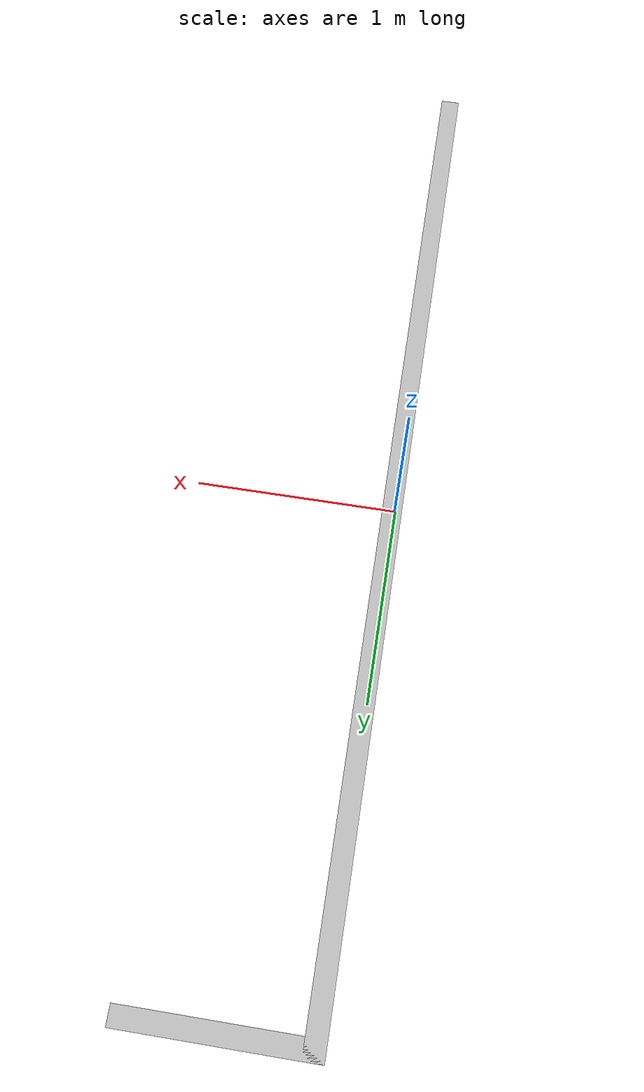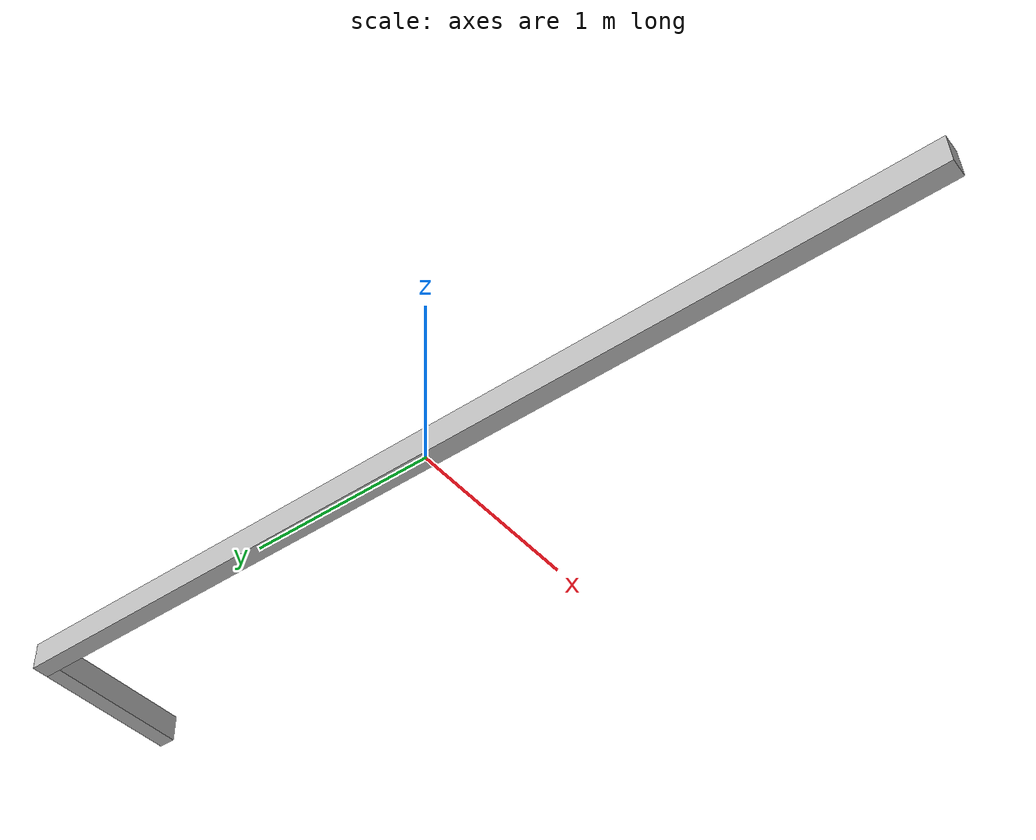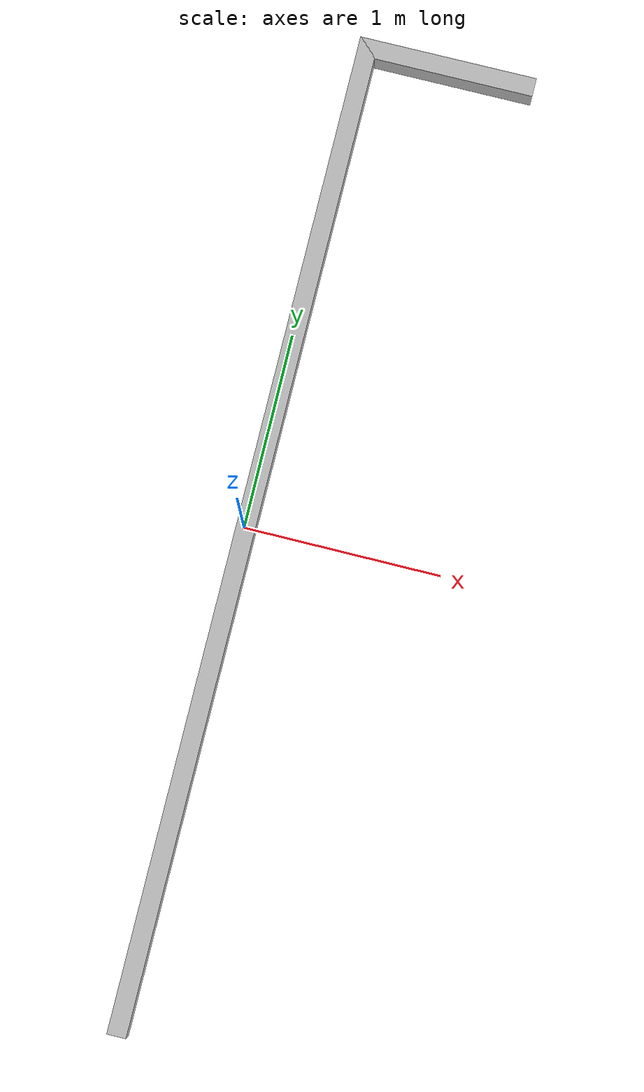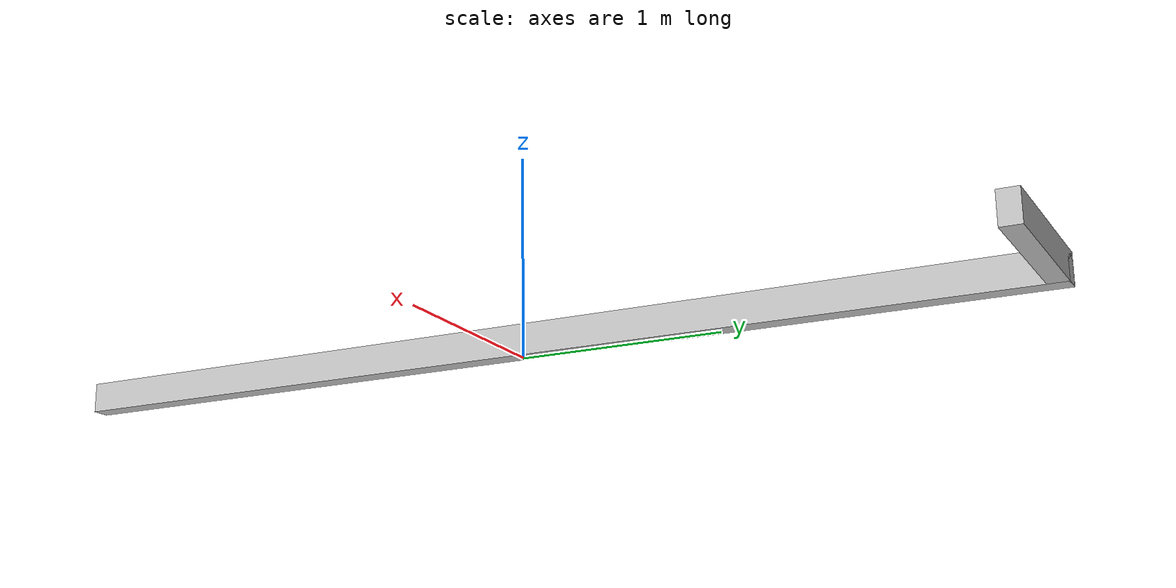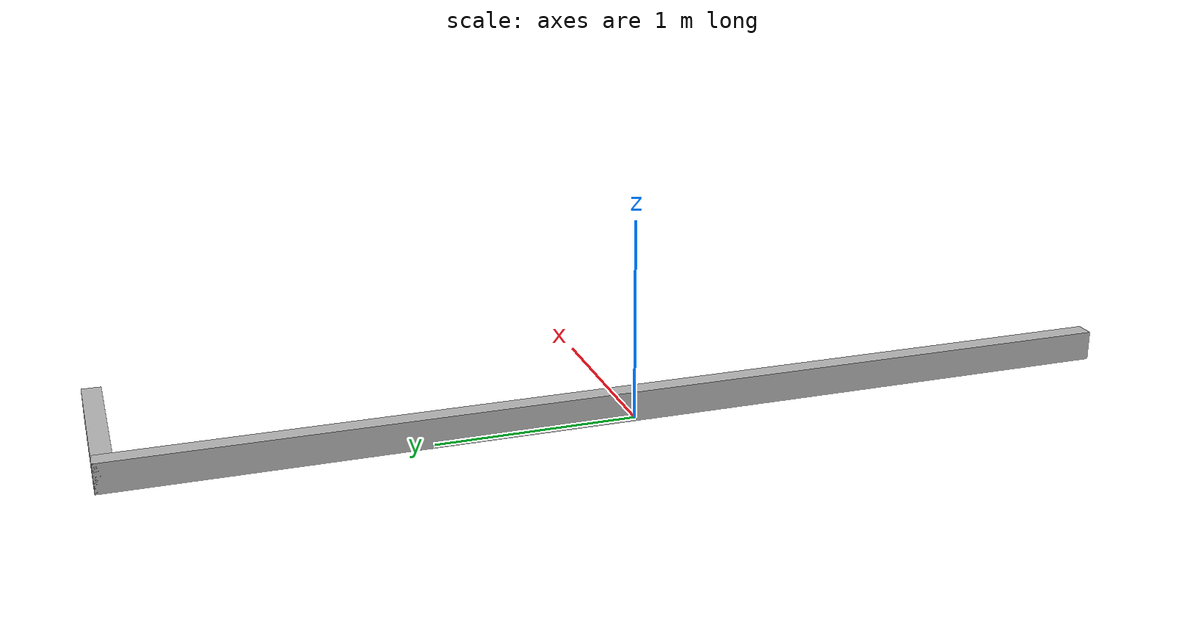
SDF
<?xml version="1.0"?>
<sdf version="1.6">
  <model name="robotics_testlabs/electro_bar_1">
    <link name="1_link">
      <collision name="1_col">
        <geometry>
          <box>
            <size>0.095 5.085 0.15</size>
          </box>
        </geometry>
      </collision>
      <visual name="1_vis">
        <geometry>
          <box>
            <size>0.095 5.085 0.15</size>
          </box>
        </geometry>
        <material>
          <ambient>0.75 0.75 0.75 1</ambient>
        </material>
      </visual>
      <pose>0.015 0 0.075 0 0 0</pose>
    </link>
    <link name="2_link">
      <collision name="2_col">
        <geometry>
          <box>
            <size>0.91 0.095 0.15</size>
          </box>
        </geometry>
      </collision>
      <visual name="2_vis">
        <geometry>
          <box>
            <size>0.91 0.095 0.15</size>
          </box>
        </geometry>
        <material>
          <ambient>0.75 0.75 0.75 1</ambient>
        </material>
      </visual>
      <pose>0.4225 2.495 0.075 0 0 0</pose>
    </link>
    <static>true</static>
  </model>
</sdf>
